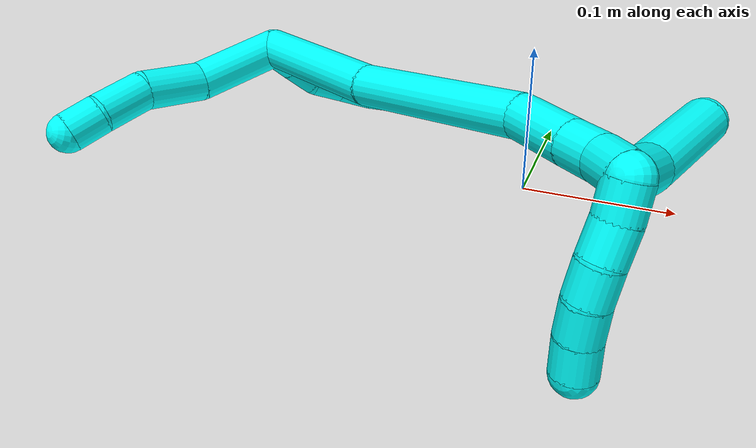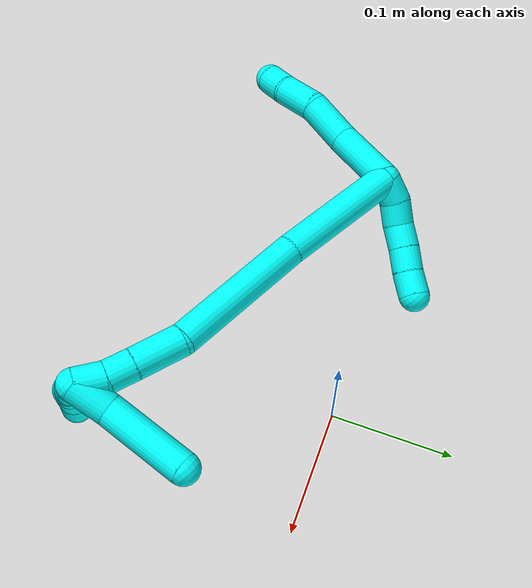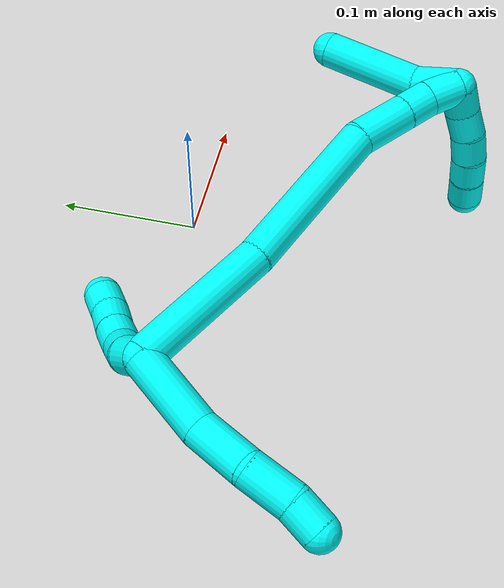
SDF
<sdf version="1.7">
 <world name="default">
  <model name="3">
   <static>0</static>
   <link name="3">
    <collision name="collision-cylinder-e_1_2_8">
     <pose>-0.01431 -0.008179 0.022938 0.34249 -0.531272 -0.094032</pose>
     <geometry><cylinder><radius>0.0125</radius><length>0.056492</length></cylinder></geometry>
     <surface>
      <friction><ode><mu>1.16</mu><mu2>1.16</mu2><slip1>0</slip1><slip2>0</slip2></ode></friction>
      <contact><ode><kp>1e+06</kp><kd>1</kd><max_vel>0</max_vel><min_depth>0.001</min_depth></ode></contact>
     </surface>
    </collision>
    <visual name="visual-cylinder-e_1_2_8">
     <pose>-0.01431 -0.008179 0.022938 0.34249 -0.531272 -0.094032</pose>
     <geometry><cylinder><radius>0.0125</radius><length>0.056492</length></cylinder></geometry>
     <material><ambient>0.003922 1 0.996078 1</ambient></material>
    </visual>
    <collision name="collision-cylinder-e_2_8_9">
     <pose>-0.033939 -0.018988 0.064706 0.13885 -0.272758 -0.019085</pose>
     <geometry><cylinder><radius>0.0125</radius><length>0.039484</length></cylinder></geometry>
     <surface>
      <friction><ode><mu>1.16</mu><mu2>1.16</mu2><slip1>0</slip1><slip2>0</slip2></ode></friction>
      <contact><ode><kp>1e+06</kp><kd>1</kd><max_vel>0</max_vel><min_depth>0.001</min_depth></ode></contact>
     </surface>
    </collision>
    <visual name="visual-cylinder-e_2_8_9">
     <pose>-0.033939 -0.018988 0.064706 0.13885 -0.272758 -0.019085</pose>
     <geometry><cylinder><radius>0.0125</radius><length>0.039484</length></cylinder></geometry>
     <material><ambient>0.003922 1 0.996078 1</ambient></material>
    </visual>
    <collision name="collision-cylinder-e_3_9_10">
     <pose>-0.044254 -0.028487 0.097262 0.463891 -0.314708 -0.074918</pose>
     <geometry><cylinder><radius>0.0125</radius><length>0.032283</length></cylinder></geometry>
     <surface>
      <friction><ode><mu>1.16</mu><mu2>1.16</mu2><slip1>0</slip1><slip2>0</slip2></ode></friction>
      <contact><ode><kp>1e+06</kp><kd>1</kd><max_vel>0</max_vel><min_depth>0.001</min_depth></ode></contact>
     </surface>
    </collision>
    <visual name="visual-cylinder-e_3_9_10">
     <pose>-0.044254 -0.028487 0.097262 0.463891 -0.314708 -0.074918</pose>
     <geometry><cylinder><radius>0.0125</radius><length>0.032283</length></cylinder></geometry>
     <material><ambient>0.003922 1 0.996078 1</ambient></material>
    </visual>
    <collision name="collision-cylinder-e_4_10_6">
     <pose>-0.054672 -0.039672 0.119362 0.476063 -0.522233 -0.129489</pose>
     <geometry><cylinder><radius>0.0125</radius><length>0.021741</length></cylinder></geometry>
     <surface>
      <friction><ode><mu>1.16</mu><mu2>1.16</mu2><slip1>0</slip1><slip2>0</slip2></ode></friction>
      <contact><ode><kp>1e+06</kp><kd>1</kd><max_vel>0</max_vel><min_depth>0.001</min_depth></ode></contact>
     </surface>
    </collision>
    <visual name="visual-cylinder-e_4_10_6">
     <pose>-0.054672 -0.039672 0.119362 0.476063 -0.522233 -0.129489</pose>
     <geometry><cylinder><radius>0.0125</radius><length>0.021741</length></cylinder></geometry>
     <material><ambient>0.003922 1 0.996078 1</ambient></material>
    </visual>
    <collision name="collision-cylinder-e_1_2_11">
     <pose>-0.001607 -0.003451 -0.009247 2.78441 -0.161446 -0.842636</pose>
     <geometry><cylinder><radius>0.0125</radius><length>0.02</length></cylinder></geometry>
     <surface>
      <friction><ode><mu>1.16</mu><mu2>1.16</mu2><slip1>0</slip1><slip2>0</slip2></ode></friction>
      <contact><ode><kp>1e+06</kp><kd>1</kd><max_vel>0</max_vel><min_depth>0.001</min_depth></ode></contact>
     </surface>
    </collision>
    <visual name="visual-cylinder-e_1_2_11">
     <pose>-0.001607 -0.003451 -0.009247 2.78441 -0.161446 -0.842636</pose>
     <geometry><cylinder><radius>0.0125</radius><length>0.02</length></cylinder></geometry>
     <material><ambient>0.003922 1 0.996078 1</ambient></material>
    </visual>
    <collision name="collision-cylinder-e_2_11_12">
     <pose>-0.002316 -0.012339 -0.026839 2.56412 0.090026 0.300991</pose>
     <geometry><cylinder><radius>0.0125</radius><length>0.02</length></cylinder></geometry>
     <surface>
      <friction><ode><mu>1.16</mu><mu2>1.16</mu2><slip1>0</slip1><slip2>0</slip2></ode></friction>
      <contact><ode><kp>1e+06</kp><kd>1</kd><max_vel>0</max_vel><min_depth>0.001</min_depth></ode></contact>
     </surface>
    </collision>
    <visual name="visual-cylinder-e_2_11_12">
     <pose>-0.002316 -0.012339 -0.026839 2.56412 0.090026 0.300991</pose>
     <geometry><cylinder><radius>0.0125</radius><length>0.02</length></cylinder></geometry>
     <material><ambient>0.003922 1 0.996078 1</ambient></material>
    </visual>
    <collision name="collision-cylinder-e_3_12_13">
     <pose>0.002103 -0.02115 -0.043914 2.77285 0.359652 1.54527</pose>
     <geometry><cylinder><radius>0.0125</radius><length>0.02</length></cylinder></geometry>
     <surface>
      <friction><ode><mu>1.16</mu><mu2>1.16</mu2><slip1>0</slip1><slip2>0</slip2></ode></friction>
      <contact><ode><kp>1e+06</kp><kd>1</kd><max_vel>0</max_vel><min_depth>0.001</min_depth></ode></contact>
     </surface>
    </collision>
    <visual name="visual-cylinder-e_3_12_13">
     <pose>0.002103 -0.02115 -0.043914 2.77285 0.359652 1.54527</pose>
     <geometry><cylinder><radius>0.0125</radius><length>0.02</length></cylinder></geometry>
     <material><ambient>0.003922 1 0.996078 1</ambient></material>
    </visual>
    <collision name="collision-cylinder-e_4_13_14">
     <pose>0.00966 -0.028405 -0.06093 2.70343 0.415617 1.51636</pose>
     <geometry><cylinder><radius>0.0125</radius><length>0.02</length></cylinder></geometry>
     <surface>
      <friction><ode><mu>1.16</mu><mu2>1.16</mu2><slip1>0</slip1><slip2>0</slip2></ode></friction>
      <contact><ode><kp>1e+06</kp><kd>1</kd><max_vel>0</max_vel><min_depth>0.001</min_depth></ode></contact>
     </surface>
    </collision>
    <visual name="visual-cylinder-e_4_13_14">
     <pose>0.00966 -0.028405 -0.06093 2.70343 0.415617 1.51636</pose>
     <geometry><cylinder><radius>0.0125</radius><length>0.02</length></cylinder></geometry>
     <material><ambient>0.003922 1 0.996078 1</ambient></material>
    </visual>
    <collision name="collision-cylinder-e_5_14_5">
     <pose>0.018047 -0.035014 -0.077795 2.83388 0.45003 1.95061</pose>
     <geometry><cylinder><radius>0.0125</radius><length>0.02</length></cylinder></geometry>
     <surface>
      <friction><ode><mu>1.16</mu><mu2>1.16</mu2><slip1>0</slip1><slip2>0</slip2></ode></friction>
      <contact><ode><kp>1e+06</kp><kd>1</kd><max_vel>0</max_vel><min_depth>0.001</min_depth></ode></contact>
     </surface>
    </collision>
    <visual name="visual-cylinder-e_5_14_5">
     <pose>0.018047 -0.035014 -0.077795 2.83388 0.45003 1.95061</pose>
     <geometry><cylinder><radius>0.0125</radius><length>0.02</length></cylinder></geometry>
     <material><ambient>0.003922 1 0.996078 1</ambient></material>
    </visual>
    <collision name="collision-cylinder-e_1_2_15">
     <pose>0.038088 -0.032799 0.004194 1.4436 0.855867 0.763607</pose>
     <geometry><cylinder><radius>0.0125</radius><length>0.100877</length></cylinder></geometry>
     <surface>
      <friction><ode><mu>1.16</mu><mu2>1.16</mu2><slip1>0</slip1><slip2>0</slip2></ode></friction>
      <contact><ode><kp>1e+06</kp><kd>1</kd><max_vel>0</max_vel><min_depth>0.001</min_depth></ode></contact>
     </surface>
    </collision>
    <visual name="visual-cylinder-e_1_2_15">
     <pose>0.038088 -0.032799 0.004194 1.4436 0.855867 0.763607</pose>
     <geometry><cylinder><radius>0.0125</radius><length>0.100877</length></cylinder></geometry>
     <material><ambient>0.003922 1 0.996078 1</ambient></material>
    </visual>
    <collision name="collision-cylinder-e_2_15_16">
     <pose>0.123625 -0.097266 0.010346 1.50908 0.98138 0.93094</pose>
     <geometry><cylinder><radius>0.0125</radius><length>0.114159</length></cylinder></geometry>
     <surface>
      <friction><ode><mu>1.16</mu><mu2>1.16</mu2><slip1>0</slip1><slip2>0</slip2></ode></friction>
      <contact><ode><kp>1e+06</kp><kd>1</kd><max_vel>0</max_vel><min_depth>0.001</min_depth></ode></contact>
     </surface>
    </collision>
    <visual name="visual-cylinder-e_2_15_16">
     <pose>0.123625 -0.097266 0.010346 1.50908 0.98138 0.93094</pose>
     <geometry><cylinder><radius>0.0125</radius><length>0.114159</length></cylinder></geometry>
     <material><ambient>0.003922 1 0.996078 1</ambient></material>
    </visual>
    <collision name="collision-cylinder-e_3_16_17">
     <pose>0.184614 -0.142429 0.017381 1.21086 0.754044 0.534989</pose>
     <geometry><cylinder><radius>0.0125</radius><length>0.039558</length></cylinder></geometry>
     <surface>
      <friction><ode><mu>1.16</mu><mu2>1.16</mu2><slip1>0</slip1><slip2>0</slip2></ode></friction>
      <contact><ode><kp>1e+06</kp><kd>1</kd><max_vel>0</max_vel><min_depth>0.001</min_depth></ode></contact>
     </surface>
    </collision>
    <visual name="visual-cylinder-e_3_16_17">
     <pose>0.184614 -0.142429 0.017381 1.21086 0.754044 0.534989</pose>
     <geometry><cylinder><radius>0.0125</radius><length>0.039558</length></cylinder></geometry>
     <material><ambient>0.003922 1 0.996078 1</ambient></material>
    </visual>
    <collision name="collision-cylinder-e_4_17_18">
     <pose>0.205668 -0.163144 0.025418 1.18192 0.766426 0.528331</pose>
     <geometry><cylinder><radius>0.0125</radius><length>0.021667</length></cylinder></geometry>
     <surface>
      <friction><ode><mu>1.16</mu><mu2>1.16</mu2><slip1>0</slip1><slip2>0</slip2></ode></friction>
      <contact><ode><kp>1e+06</kp><kd>1</kd><max_vel>0</max_vel><min_depth>0.001</min_depth></ode></contact>
     </surface>
    </collision>
    <visual name="visual-cylinder-e_4_17_18">
     <pose>0.205668 -0.163144 0.025418 1.18192 0.766426 0.528331</pose>
     <geometry><cylinder><radius>0.0125</radius><length>0.021667</length></cylinder></geometry>
     <material><ambient>0.003922 1 0.996078 1</ambient></material>
    </visual>
    <collision name="collision-cylinder-e_5_18_1">
     <pose>0.220471 -0.177701 0.034202 0.899605 0.661259 0.328444</pose>
     <geometry><cylinder><radius>0.0125</radius><length>0.023738</length></cylinder></geometry>
     <surface>
      <friction><ode><mu>1.16</mu><mu2>1.16</mu2><slip1>0</slip1><slip2>0</slip2></ode></friction>
      <contact><ode><kp>1e+06</kp><kd>1</kd><max_vel>0</max_vel><min_depth>0.001</min_depth></ode></contact>
     </surface>
    </collision>
    <visual name="visual-cylinder-e_5_18_1">
     <pose>0.220471 -0.177701 0.034202 0.899605 0.661259 0.328444</pose>
     <geometry><cylinder><radius>0.0125</radius><length>0.023738</length></cylinder></geometry>
     <material><ambient>0.003922 1 0.996078 1</ambient></material>
    </visual>
    <collision name="collision-cylinder-e_1_1_19">
     <pose>0.221384 -0.192709 0.039336 1.66079 -0.691304 -0.750761</pose>
     <geometry><cylinder><radius>0.0125</radius><length>0.02</length></cylinder></geometry>
     <surface>
      <friction><ode><mu>1.16</mu><mu2>1.16</mu2><slip1>0</slip1><slip2>0</slip2></ode></friction>
      <contact><ode><kp>1e+06</kp><kd>1</kd><max_vel>0</max_vel><min_depth>0.001</min_depth></ode></contact>
     </surface>
    </collision>
    <visual name="visual-cylinder-e_1_1_19">
     <pose>0.221384 -0.192709 0.039336 1.66079 -0.691304 -0.750761</pose>
     <geometry><cylinder><radius>0.0125</radius><length>0.02</length></cylinder></geometry>
     <material><ambient>0.003922 1 0.996078 1</ambient></material>
    </visual>
    <collision name="collision-cylinder-e_2_19_20">
     <pose>0.208191 -0.20768 0.03915 1.50148 -0.750212 -0.704109</pose>
     <geometry><cylinder><radius>0.0125</radius><length>0.02</length></cylinder></geometry>
     <surface>
      <friction><ode><mu>1.16</mu><mu2>1.16</mu2><slip1>0</slip1><slip2>0</slip2></ode></friction>
      <contact><ode><kp>1e+06</kp><kd>1</kd><max_vel>0</max_vel><min_depth>0.001</min_depth></ode></contact>
     </surface>
    </collision>
    <visual name="visual-cylinder-e_2_19_20">
     <pose>0.208191 -0.20768 0.03915 1.50148 -0.750212 -0.704109</pose>
     <geometry><cylinder><radius>0.0125</radius><length>0.02</length></cylinder></geometry>
     <material><ambient>0.003922 1 0.996078 1</ambient></material>
    </visual>
    <collision name="collision-cylinder-e_3_20_21">
     <pose>0.194327 -0.221973 0.038465 1.73961 -0.78187 -0.90855</pose>
     <geometry><cylinder><radius>0.0125</radius><length>0.02</length></cylinder></geometry>
     <surface>
      <friction><ode><mu>1.16</mu><mu2>1.16</mu2><slip1>0</slip1><slip2>0</slip2></ode></friction>
      <contact><ode><kp>1e+06</kp><kd>1</kd><max_vel>0</max_vel><min_depth>0.001</min_depth></ode></contact>
     </surface>
    </collision>
    <visual name="visual-cylinder-e_3_20_21">
     <pose>0.194327 -0.221973 0.038465 1.73961 -0.78187 -0.90855</pose>
     <geometry><cylinder><radius>0.0125</radius><length>0.02</length></cylinder></geometry>
     <material><ambient>0.003922 1 0.996078 1</ambient></material>
    </visual>
    <collision name="collision-cylinder-e_4_21_22">
     <pose>0.180621 -0.235923 0.034574 1.94091 -0.728778 -1.01657</pose>
     <geometry><cylinder><radius>0.0125</radius><length>0.02</length></cylinder></geometry>
     <surface>
      <friction><ode><mu>1.16</mu><mu2>1.16</mu2><slip1>0</slip1><slip2>0</slip2></ode></friction>
      <contact><ode><kp>1e+06</kp><kd>1</kd><max_vel>0</max_vel><min_depth>0.001</min_depth></ode></contact>
     </surface>
    </collision>
    <visual name="visual-cylinder-e_4_21_22">
     <pose>0.180621 -0.235923 0.034574 1.94091 -0.728778 -1.01657</pose>
     <geometry><cylinder><radius>0.0125</radius><length>0.02</length></cylinder></geometry>
     <material><ambient>0.003922 1 0.996078 1</ambient></material>
    </visual>
    <collision name="collision-cylinder-e_5_22_4">
     <pose>0.167901 -0.250193 0.028754 1.9741 -0.651146 -0.94494</pose>
     <geometry><cylinder><radius>0.0125</radius><length>0.02</length></cylinder></geometry>
     <surface>
      <friction><ode><mu>1.16</mu><mu2>1.16</mu2><slip1>0</slip1><slip2>0</slip2></ode></friction>
      <contact><ode><kp>1e+06</kp><kd>1</kd><max_vel>0</max_vel><min_depth>0.001</min_depth></ode></contact>
     </surface>
    </collision>
    <visual name="visual-cylinder-e_5_22_4">
     <pose>0.167901 -0.250193 0.028754 1.9741 -0.651146 -0.94494</pose>
     <geometry><cylinder><radius>0.0125</radius><length>0.02</length></cylinder></geometry>
     <material><ambient>0.003922 1 0.996078 1</ambient></material>
    </visual>
    <collision name="collision-cylinder-e_1_1_23">
     <pose>0.225677 -0.181986 0.024784 -2.94411 -0.133172 1.18495</pose>
     <geometry><cylinder><radius>0.0125</radius><length>0.03137</length></cylinder></geometry>
     <surface>
      <friction><ode><mu>1.16</mu><mu2>1.16</mu2><slip1>0</slip1><slip2>0</slip2></ode></friction>
      <contact><ode><kp>1e+06</kp><kd>1</kd><max_vel>0</max_vel><min_depth>0.001</min_depth></ode></contact>
     </surface>
    </collision>
    <visual name="visual-cylinder-e_1_1_23">
     <pose>0.225677 -0.181986 0.024784 -2.94411 -0.133172 1.18495</pose>
     <geometry><cylinder><radius>0.0125</radius><length>0.03137</length></cylinder></geometry>
     <material><ambient>0.003922 1 0.996078 1</ambient></material>
    </visual>
    <collision name="collision-cylinder-e_2_23_3">
     <pose>0.22855 -0.16706 -0.02227 -2.78427 0.144909 -0.764328</pose>
     <geometry><cylinder><radius>0.0125</radius><length>0.06863</length></cylinder></geometry>
     <surface>
      <friction><ode><mu>1.16</mu><mu2>1.16</mu2><slip1>0</slip1><slip2>0</slip2></ode></friction>
      <contact><ode><kp>1e+06</kp><kd>1</kd><max_vel>0</max_vel><min_depth>0.001</min_depth></ode></contact>
     </surface>
    </collision>
    <visual name="visual-cylinder-e_2_23_3">
     <pose>0.22855 -0.16706 -0.02227 -2.78427 0.144909 -0.764328</pose>
     <geometry><cylinder><radius>0.0125</radius><length>0.06863</length></cylinder></geometry>
     <material><ambient>0.003922 1 0.996078 1</ambient></material>
    </visual>
    <collision name="collision-sphere-3">
     <pose>0.233505 -0.155183 -0.054081 0 -0 0</pose>
     <geometry><sphere><radius>0.0125</radius></sphere></geometry>
     <surface>
      <friction><ode><mu>1.16</mu><mu2>1.16</mu2><slip1>0</slip1><slip2>0</slip2></ode></friction>
      <contact><ode><kp>1e+06</kp><kd>1</kd><max_vel>0</max_vel><min_depth>0.001</min_depth></ode></contact>
     </surface>
    </collision>
    <visual name="visual-sphere-3">
     <pose>0.233505 -0.155183 -0.054081 0 -0 0</pose>
     <geometry><sphere><radius>0.0125</radius></sphere></geometry>
     <material><ambient>0.003922 1 0.996078 1</ambient></material>
    </visual>
    <collision name="collision-sphere-23">
     <pose>0.223594 -0.178936 0.00954 0 -0 0</pose>
     <geometry><sphere><radius>0.0125</radius></sphere></geometry>
     <surface>
      <friction><ode><mu>1.16</mu><mu2>1.16</mu2><slip1>0</slip1><slip2>0</slip2></ode></friction>
      <contact><ode><kp>1e+06</kp><kd>1</kd><max_vel>0</max_vel><min_depth>0.001</min_depth></ode></contact>
     </surface>
    </collision>
    <visual name="visual-sphere-23">
     <pose>0.223594 -0.178936 0.00954 0 -0 0</pose>
     <geometry><sphere><radius>0.0125</radius></sphere></geometry>
     <material><ambient>0.003922 1 0.996078 1</ambient></material>
    </visual>
    <collision name="collision-sphere-4">
     <pose>0.16184 -0.257509 0.025633 0 -0 0</pose>
     <geometry><sphere><radius>0.0125</radius></sphere></geometry>
     <surface>
      <friction><ode><mu>1.16</mu><mu2>1.16</mu2><slip1>0</slip1><slip2>0</slip2></ode></friction>
      <contact><ode><kp>1e+06</kp><kd>1</kd><max_vel>0</max_vel><min_depth>0.001</min_depth></ode></contact>
     </surface>
    </collision>
    <visual name="visual-sphere-4">
     <pose>0.16184 -0.257509 0.025633 0 -0 0</pose>
     <geometry><sphere><radius>0.0125</radius></sphere></geometry>
     <material><ambient>0.003922 1 0.996078 1</ambient></material>
    </visual>
    <collision name="collision-sphere-22">
     <pose>0.173962 -0.242878 0.031876 0 -0 0</pose>
     <geometry><sphere><radius>0.0125</radius></sphere></geometry>
     <surface>
      <friction><ode><mu>1.16</mu><mu2>1.16</mu2><slip1>0</slip1><slip2>0</slip2></ode></friction>
      <contact><ode><kp>1e+06</kp><kd>1</kd><max_vel>0</max_vel><min_depth>0.001</min_depth></ode></contact>
     </surface>
    </collision>
    <visual name="visual-sphere-22">
     <pose>0.173962 -0.242878 0.031876 0 -0 0</pose>
     <geometry><sphere><radius>0.0125</radius></sphere></geometry>
     <material><ambient>0.003922 1 0.996078 1</ambient></material>
    </visual>
    <collision name="collision-sphere-21">
     <pose>0.187281 -0.228968 0.037272 0 -0 0</pose>
     <geometry><sphere><radius>0.0125</radius></sphere></geometry>
     <surface>
      <friction><ode><mu>1.16</mu><mu2>1.16</mu2><slip1>0</slip1><slip2>0</slip2></ode></friction>
      <contact><ode><kp>1e+06</kp><kd>1</kd><max_vel>0</max_vel><min_depth>0.001</min_depth></ode></contact>
     </surface>
    </collision>
    <visual name="visual-sphere-21">
     <pose>0.187281 -0.228968 0.037272 0 -0 0</pose>
     <geometry><sphere><radius>0.0125</radius></sphere></geometry>
     <material><ambient>0.003922 1 0.996078 1</ambient></material>
    </visual>
    <collision name="collision-sphere-20">
     <pose>0.201373 -0.214978 0.039657 0 -0 0</pose>
     <geometry><sphere><radius>0.0125</radius></sphere></geometry>
     <surface>
      <friction><ode><mu>1.16</mu><mu2>1.16</mu2><slip1>0</slip1><slip2>0</slip2></ode></friction>
      <contact><ode><kp>1e+06</kp><kd>1</kd><max_vel>0</max_vel><min_depth>0.001</min_depth></ode></contact>
     </surface>
    </collision>
    <visual name="visual-sphere-20">
     <pose>0.201373 -0.214978 0.039657 0 -0 0</pose>
     <geometry><sphere><radius>0.0125</radius></sphere></geometry>
     <material><ambient>0.003922 1 0.996078 1</ambient></material>
    </visual>
    <collision name="collision-sphere-11">
     <pose>-0.003215 -0.006902 -0.018494 0 -0 0</pose>
     <geometry><sphere><radius>0.0125</radius></sphere></geometry>
     <surface>
      <friction><ode><mu>1.16</mu><mu2>1.16</mu2><slip1>0</slip1><slip2>0</slip2></ode></friction>
      <contact><ode><kp>1e+06</kp><kd>1</kd><max_vel>0</max_vel><min_depth>0.001</min_depth></ode></contact>
     </surface>
    </collision>
    <visual name="visual-sphere-11">
     <pose>-0.003215 -0.006902 -0.018494 0 -0 0</pose>
     <geometry><sphere><radius>0.0125</radius></sphere></geometry>
     <material><ambient>0.003922 1 0.996078 1</ambient></material>
    </visual>
    <collision name="collision-sphere-6">
     <pose>-0.060095 -0.04399 0.127736 0 -0 0</pose>
     <geometry><sphere><radius>0.0125</radius></sphere></geometry>
     <surface>
      <friction><ode><mu>1.16</mu><mu2>1.16</mu2><slip1>0</slip1><slip2>0</slip2></ode></friction>
      <contact><ode><kp>1e+06</kp><kd>1</kd><max_vel>0</max_vel><min_depth>0.001</min_depth></ode></contact>
     </surface>
    </collision>
    <visual name="visual-sphere-6">
     <pose>-0.060095 -0.04399 0.127736 0 -0 0</pose>
     <geometry><sphere><radius>0.0125</radius></sphere></geometry>
     <material><ambient>0.003922 1 0.996078 1</ambient></material>
    </visual>
    <collision name="collision-sphere-10">
     <pose>-0.04925 -0.035355 0.110988 0 -0 0</pose>
     <geometry><sphere><radius>0.0125</radius></sphere></geometry>
     <surface>
      <friction><ode><mu>1.16</mu><mu2>1.16</mu2><slip1>0</slip1><slip2>0</slip2></ode></friction>
      <contact><ode><kp>1e+06</kp><kd>1</kd><max_vel>0</max_vel><min_depth>0.001</min_depth></ode></contact>
     </surface>
    </collision>
    <visual name="visual-sphere-10">
     <pose>-0.04925 -0.035355 0.110988 0 -0 0</pose>
     <geometry><sphere><radius>0.0125</radius></sphere></geometry>
     <material><ambient>0.003922 1 0.996078 1</ambient></material>
    </visual>
    <collision name="collision-sphere-9">
     <pose>-0.039257 -0.02162 0.083535 0 -0 0</pose>
     <geometry><sphere><radius>0.0125</radius></sphere></geometry>
     <surface>
      <friction><ode><mu>1.16</mu><mu2>1.16</mu2><slip1>0</slip1><slip2>0</slip2></ode></friction>
      <contact><ode><kp>1e+06</kp><kd>1</kd><max_vel>0</max_vel><min_depth>0.001</min_depth></ode></contact>
     </surface>
    </collision>
    <visual name="visual-sphere-9">
     <pose>-0.039257 -0.02162 0.083535 0 -0 0</pose>
     <geometry><sphere><radius>0.0125</radius></sphere></geometry>
     <material><ambient>0.003922 1 0.996078 1</ambient></material>
    </visual>
    <collision name="collision-sphere-2">
     <geometry><sphere><radius>0.0125</radius></sphere></geometry>
     <surface>
      <friction><ode><mu>1.16</mu><mu2>1.16</mu2><slip1>0</slip1><slip2>0</slip2></ode></friction>
      <contact><ode><kp>1e+06</kp><kd>1</kd><max_vel>0</max_vel><min_depth>0.001</min_depth></ode></contact>
     </surface>
    </collision>
    <visual name="visual-sphere-2">
     <geometry><sphere><radius>0.0125</radius></sphere></geometry>
     <material><ambient>0.003922 1 0.996078 1</ambient></material>
    </visual>
    <collision name="collision-sphere-19">
     <pose>0.215009 -0.200382 0.038643 0 -0 0</pose>
     <geometry><sphere><radius>0.0125</radius></sphere></geometry>
     <surface>
      <friction><ode><mu>1.16</mu><mu2>1.16</mu2><slip1>0</slip1><slip2>0</slip2></ode></friction>
      <contact><ode><kp>1e+06</kp><kd>1</kd><max_vel>0</max_vel><min_depth>0.001</min_depth></ode></contact>
     </surface>
    </collision>
    <visual name="visual-sphere-19">
     <pose>0.215009 -0.200382 0.038643 0 -0 0</pose>
     <geometry><sphere><radius>0.0125</radius></sphere></geometry>
     <material><ambient>0.003922 1 0.996078 1</ambient></material>
    </visual>
    <collision name="collision-sphere-8">
     <pose>-0.028621 -0.016357 0.045877 0 -0 0</pose>
     <geometry><sphere><radius>0.0125</radius></sphere></geometry>
     <surface>
      <friction><ode><mu>1.16</mu><mu2>1.16</mu2><slip1>0</slip1><slip2>0</slip2></ode></friction>
      <contact><ode><kp>1e+06</kp><kd>1</kd><max_vel>0</max_vel><min_depth>0.001</min_depth></ode></contact>
     </surface>
    </collision>
    <visual name="visual-sphere-8">
     <pose>-0.028621 -0.016357 0.045877 0 -0 0</pose>
     <geometry><sphere><radius>0.0125</radius></sphere></geometry>
     <material><ambient>0.003922 1 0.996078 1</ambient></material>
    </visual>
    <collision name="collision-sphere-12">
     <pose>-0.001417 -0.017776 -0.035183 0 -0 0</pose>
     <geometry><sphere><radius>0.0125</radius></sphere></geometry>
     <surface>
      <friction><ode><mu>1.16</mu><mu2>1.16</mu2><slip1>0</slip1><slip2>0</slip2></ode></friction>
      <contact><ode><kp>1e+06</kp><kd>1</kd><max_vel>0</max_vel><min_depth>0.001</min_depth></ode></contact>
     </surface>
    </collision>
    <visual name="visual-sphere-12">
     <pose>-0.001417 -0.017776 -0.035183 0 -0 0</pose>
     <geometry><sphere><radius>0.0125</radius></sphere></geometry>
     <material><ambient>0.003922 1 0.996078 1</ambient></material>
    </visual>
    <collision name="collision-sphere-13">
     <pose>0.005622 -0.024523 -0.052645 0 -0 0</pose>
     <geometry><sphere><radius>0.0125</radius></sphere></geometry>
     <surface>
      <friction><ode><mu>1.16</mu><mu2>1.16</mu2><slip1>0</slip1><slip2>0</slip2></ode></friction>
      <contact><ode><kp>1e+06</kp><kd>1</kd><max_vel>0</max_vel><min_depth>0.001</min_depth></ode></contact>
     </surface>
    </collision>
    <visual name="visual-sphere-13">
     <pose>0.005622 -0.024523 -0.052645 0 -0 0</pose>
     <geometry><sphere><radius>0.0125</radius></sphere></geometry>
     <material><ambient>0.003922 1 0.996078 1</ambient></material>
    </visual>
    <collision name="collision-sphere-14">
     <pose>0.013697 -0.032287 -0.069214 0 -0 0</pose>
     <geometry><sphere><radius>0.0125</radius></sphere></geometry>
     <surface>
      <friction><ode><mu>1.16</mu><mu2>1.16</mu2><slip1>0</slip1><slip2>0</slip2></ode></friction>
      <contact><ode><kp>1e+06</kp><kd>1</kd><max_vel>0</max_vel><min_depth>0.001</min_depth></ode></contact>
     </surface>
    </collision>
    <visual name="visual-sphere-14">
     <pose>0.013697 -0.032287 -0.069214 0 -0 0</pose>
     <geometry><sphere><radius>0.0125</radius></sphere></geometry>
     <material><ambient>0.003922 1 0.996078 1</ambient></material>
    </visual>
    <collision name="collision-sphere-5">
     <pose>0.022397 -0.037741 -0.086377 0 -0 0</pose>
     <geometry><sphere><radius>0.0125</radius></sphere></geometry>
     <surface>
      <friction><ode><mu>1.16</mu><mu2>1.16</mu2><slip1>0</slip1><slip2>0</slip2></ode></friction>
      <contact><ode><kp>1e+06</kp><kd>1</kd><max_vel>0</max_vel><min_depth>0.001</min_depth></ode></contact>
     </surface>
    </collision>
    <visual name="visual-sphere-5">
     <pose>0.022397 -0.037741 -0.086377 0 -0 0</pose>
     <geometry><sphere><radius>0.0125</radius></sphere></geometry>
     <material><ambient>0.003922 1 0.996078 1</ambient></material>
    </visual>
    <collision name="collision-sphere-15">
     <pose>0.076176 -0.065597 0.008389 0 -0 0</pose>
     <geometry><sphere><radius>0.0125</radius></sphere></geometry>
     <surface>
      <friction><ode><mu>1.16</mu><mu2>1.16</mu2><slip1>0</slip1><slip2>0</slip2></ode></friction>
      <contact><ode><kp>1e+06</kp><kd>1</kd><max_vel>0</max_vel><min_depth>0.001</min_depth></ode></contact>
     </surface>
    </collision>
    <visual name="visual-sphere-15">
     <pose>0.076176 -0.065597 0.008389 0 -0 0</pose>
     <geometry><sphere><radius>0.0125</radius></sphere></geometry>
     <material><ambient>0.003922 1 0.996078 1</ambient></material>
    </visual>
    <collision name="collision-sphere-16">
     <pose>0.171073 -0.128935 0.012303 0 -0 0</pose>
     <geometry><sphere><radius>0.0125</radius></sphere></geometry>
     <surface>
      <friction><ode><mu>1.16</mu><mu2>1.16</mu2><slip1>0</slip1><slip2>0</slip2></ode></friction>
      <contact><ode><kp>1e+06</kp><kd>1</kd><max_vel>0</max_vel><min_depth>0.001</min_depth></ode></contact>
     </surface>
    </collision>
    <visual name="visual-sphere-16">
     <pose>0.171073 -0.128935 0.012303 0 -0 0</pose>
     <geometry><sphere><radius>0.0125</radius></sphere></geometry>
     <material><ambient>0.003922 1 0.996078 1</ambient></material>
    </visual>
    <collision name="collision-sphere-17">
     <pose>0.198155 -0.155922 0.022459 0 -0 0</pose>
     <geometry><sphere><radius>0.0125</radius></sphere></geometry>
     <surface>
      <friction><ode><mu>1.16</mu><mu2>1.16</mu2><slip1>0</slip1><slip2>0</slip2></ode></friction>
      <contact><ode><kp>1e+06</kp><kd>1</kd><max_vel>0</max_vel><min_depth>0.001</min_depth></ode></contact>
     </surface>
    </collision>
    <visual name="visual-sphere-17">
     <pose>0.198155 -0.155922 0.022459 0 -0 0</pose>
     <geometry><sphere><radius>0.0125</radius></sphere></geometry>
     <material><ambient>0.003922 1 0.996078 1</ambient></material>
    </visual>
    <collision name="collision-sphere-18">
     <pose>0.213182 -0.170366 0.028377 0 -0 0</pose>
     <geometry><sphere><radius>0.0125</radius></sphere></geometry>
     <surface>
      <friction><ode><mu>1.16</mu><mu2>1.16</mu2><slip1>0</slip1><slip2>0</slip2></ode></friction>
      <contact><ode><kp>1e+06</kp><kd>1</kd><max_vel>0</max_vel><min_depth>0.001</min_depth></ode></contact>
     </surface>
    </collision>
    <visual name="visual-sphere-18">
     <pose>0.213182 -0.170366 0.028377 0 -0 0</pose>
     <geometry><sphere><radius>0.0125</radius></sphere></geometry>
     <material><ambient>0.003922 1 0.996078 1</ambient></material>
    </visual>
    <collision name="collision-sphere-1">
     <pose>0.22776 -0.185036 0.040028 0 -0 0</pose>
     <geometry><sphere><radius>0.0125</radius></sphere></geometry>
     <surface>
      <friction><ode><mu>1.16</mu><mu2>1.16</mu2><slip1>0</slip1><slip2>0</slip2></ode></friction>
      <contact><ode><kp>1e+06</kp><kd>1</kd><max_vel>0</max_vel><min_depth>0.001</min_depth></ode></contact>
     </surface>
    </collision>
    <visual name="visual-sphere-1">
     <pose>0.22776 -0.185036 0.040028 0 -0 0</pose>
     <geometry><sphere><radius>0.0125</radius></sphere></geometry>
     <material><ambient>0.003922 1 0.996078 1</ambient></material>
    </visual>
    <inertial>
     <pose>0.097218 -0.096193 0.015627 0 -0 0</pose>
     <mass>0.75</mass>
     <inertia><ixx>0.000238</ixx><ixy>0</ixy><ixz>0</ixz><iyy>0.000219</iyy><iyz>0</iyz><izz>-3e-05</izz></inertia>
    </inertial>
   </link>
   <pose>-0.174087 -0.017757 0.085197 1.1022 -0.657785 -0.139443</pose>
  </model>
 </world>
</sdf>
